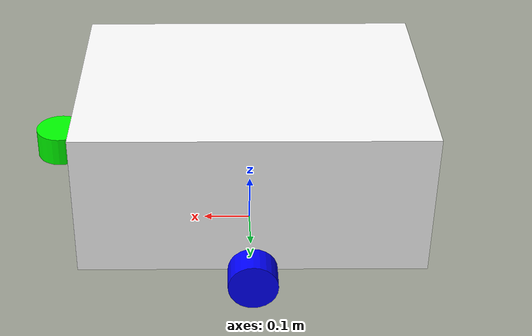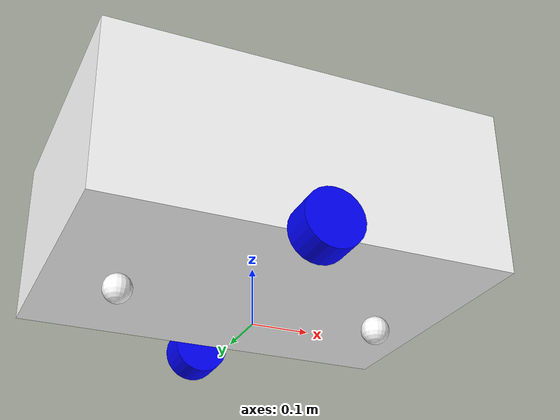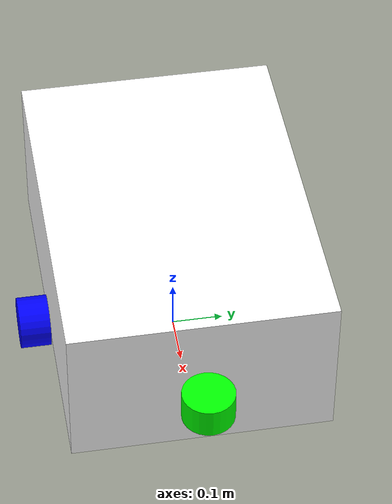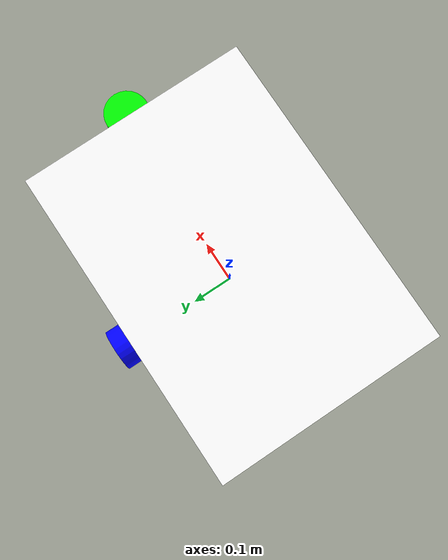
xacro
<?xml version="1.0" ?>
<robot name = "UDOn" xmlns:xacro = "http://www.ros.org/wiki/xacro">

    <xacro:include filename = "properties.xacro" />
    <xacro:include filename = "model.xacro" />

</robot>

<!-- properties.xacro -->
<robot xmlns:xacro = "http://www.ros.org/wiki/xacro">

    <material name = "white">
        <color rgba = "1 1 1 1" />
    </material>
    <material name = "blue">
        <color rgba = "0 0 1 1" />
    </material>
    <material name = "green">
        <color rgba = "0 1 0 1" />
    </material>
    <material name = "red">
        <color rgba = "1 0 0 1" />
    </material>
    <material name = "black">
        <color rgba = "0 0 0 1" />
    </material>

    <xacro:macro name = "box_inertial" params = "m l w h xyz rpy">
        <inertial>
            <origin xyz = "${xyz}" rpy = "${rpy}" />
            <mass value="${m}"/>
            <inertia ixx="${(m / 12) * (h*h + w*w)}" ixy="0.0" ixz="0.0"
                     iyy="${(m / 12) * (h*h + l*l)}" iyz="0.0"
                     izz="${(m / 12) * (w*w + l*l)}" />
        </inertial>
    </xacro:macro>

    <xacro:macro name = "cylinder_inertial" params = "m r h xyz rpy">
        <inertial>
            <origin xyz = "${xyz}" rpy = "${rpy}" />
            <mass value="${m}"/>
            <inertia ixx="${ (m / 12) * (h*h + 3*r*r) }" ixy="0.0" ixz="0.0"
                     iyy="${ (m / 12) * (h*h + 3*r*r) }" iyz="0.0"
                     izz="${ (m / 12) * (r*r) }" />
        </inertial>
    </xacro:macro>

    <xacro:macro name = "sphere_inertial" params = "m r xyz rpy">
        <inertial>
            <origin xyz="${xyz}" rpy="${rpy}"/>
            <mass value = "${m}" />
            <inertia ixx="${(2*m*r*r)/ 5}" ixy="0.0" ixz="0.0"
                     iyy="${(2*m*r*r)/ 5}" iyz="0.0"
                     izz="${(2*m*r*r)/ 5}"/>
        </inertial>
    </xacro:macro>

</robot>

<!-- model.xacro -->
<robot xmlns:xacro = "http://www.ros.org/wiki/xacro">

    <xacro:property name = "base_length" value = "0.7" />
    <xacro:property name = "base_width" value = "0.5" />
    <xacro:property name = "base_height" value = "0.3" />

    <xacro:property name = "wheel_radius" value = "0.05" />
    <xacro:property name = "wheel_length" value = "0.06" />

    <xacro:property name = "support_wheel_radius" value = "0.025" />

    <xacro:property name = "lidar_radius" value = "0.05" />
    <xacro:property name = "lidar_length" value = "0.06" />

    <link name = "footprint">
    </link>

    <link name = "base_link">
        <visual>
            <geometry>
                <box size = "${base_length} ${base_width} ${base_height}" />
            </geometry>
            <origin xyz = "0 0 0" rpy = "0 0 0" />
            <material name = "white" />
        </visual>
        <!--add collision property-->
        <collision>
            <geometry>
                <box size = "${base_length} ${base_width} ${base_height}" />
            </geometry>
            <origin xyz = "0 0 0" rpy = "0 0 0" />
        </collision>
        <!--add inertial property-->
        <xacro:box_inertial m = "15.0" l = "${base_length}" w = "${base_width}" h = "${base_height}"
                            xyz = "0 0 0" rpy = "0 0 0" />
    </link>

    <joint name = "base_joint" type = "fixed">
        <parent link = "footprint" />
        <child link = "base_link" />
        <origin xyz = "0 0 ${(base_height / 2.0 + wheel_radius)}" rpy = "0 0 0" />
    </joint>

    <link name = "lidar_link">
        <visual>
            <geometry>
                <cylinder radius="${lidar_radius}" length="${lidar_length}" />
            </geometry>
            <origin xyz = "0.0 0.0 0.0" rpy = "0.0 0.0 0.0" />
            <material name = "green" />
        </visual>
        <collision>
            <geometry>
                <cylinder radius="${lidar_radius}" length="${lidar_length}"/>
            </geometry>
            <origin xyz="0.0 0.0 0.0" rpy="0.0 0.0 0.0"/>
        </collision>
        <xacro:cylinder_inertial m = "0.5" r = "${lidar_radius}" h = "${lidar_length}"
                                 xyz = "0.0 0.0 0.0" rpy = "0.0 0.0 0.0" />
    </link>

    <joint name="lidar_joint" type="fixed">
        <parent link="base_link"/>
        <child link="lidar_link"/>
        <origin xyz = "${(base_length) / 2.0 + lidar_radius} 0 0" rpy = "0 0 0" />
        <axis xyz="0.0 0.0 0.0"/>
    </joint>

    <link name = "right_wheel">
        <visual>
            <geometry>
                <cylinder radius = "${wheel_radius}" length = "${wheel_length}" />
            </geometry>
            <origin xyz = "0 0 0" rpy = "${pi / 2.0} 0 0" />
            <material name = "blue" />
        </visual>
        <collision>
            <geometry>
                <cylinder radius = "${wheel_radius}" length = "${wheel_length}" />
            </geometry>
            <origin xyz = "0 0 0" rpy = "${pi / 2.0} 0 0" />
        </collision>
        <xacro:cylinder_inertial m = "5.0" r = "${wheel_radius}" h = "${wheel_length}"
                                 xyz = "0 0 0" rpy = "${pi / 2.0} 0 0" />
    </link>

    <link name = "left_wheel">
        <visual>
            <geometry>
                <cylinder radius = "${wheel_radius}" length = "${wheel_length}" />
            </geometry>
            <origin xyz = "0 0 0" rpy = "${pi / 2.0} 0 0" />
            <material name = "blue" />
        </visual>

        <collision>
            <geometry>
                <cylinder radius = "${wheel_radius}" length = "${wheel_length}" />
            </geometry>
            <origin xyz = "0 0 0" rpy = "${pi / 2.0} 0 0" />
        </collision>

        <xacro:cylinder_inertial m = "5.0" r = "${wheel_radius}" h = "${wheel_length}"
                                 xyz = "0 0 0" rpy = "${pi / 2.0} 0 0" />
    </link>

    <link name = "frontSuppor_wheel">
        <visual>
            <geometry>
                <sphere radius = "${support_wheel_radius}" />
            </geometry>
            <origin xyz = "0 0 0" rpy = "0 0 0" />
            <material name = "white" />
        </visual>
        <collision>
            <geometry>
                <sphere radius="${support_wheel_radius}"/>
            </geometry>
            <origin xyz="0.0 0.0 0.0" rpy="0.0 0.0 0.0"/>
        </collision>
        <xacro:sphere_inertial m = "0.5" r = "${support_wheel_radius}" xyz = "0.0 0.0 0.0" rpy = "0.0 0.0 0.0" />
    </link>

    <link name = "backSuppor_wheel">
        <visual>
            <geometry>
                <sphere radius = "${support_wheel_radius}" />
            </geometry>
            <origin xyz = "0 0 0" rpy = "0 0 0" />
            <material name = "white" />
        </visual>
        <collision>
            <geometry>
                <sphere radius="${support_wheel_radius}"/>
            </geometry>
            <origin xyz="0.0 0.0 0.0" rpy="0.0 0.0 0.0"/>
        </collision>
        <xacro:sphere_inertial m = "0.5" r = "${support_wheel_radius}" xyz = "0.0 0.0 0.0" rpy = "0.0 0.0 0.0" />
    </link>

    <link name = "imu_link">
        <visual>
            <geometry>
                <box size="0.045 0.04 0.01"/>
            </geometry>
            <origin xyz = "0 0 0" rpy = "0 0 0" />
            <material name = "white" />
        </visual>
        <collision>
            <geometry>
                <sphere radius="${support_wheel_radius}"/>
            </geometry>
            <origin xyz="0.0 0.0 0.0" rpy="0.0 0.0 0.0"/>
        </collision>
        <xacro:sphere_inertial m = "0.5" r = "${support_wheel_radius}" xyz = "0.0 0.0 0.0" rpy = "0.0 0.0 0.0" />
    </link>

    <!-- IMU joint-->
    <joint name = "base_imu_joint" type = "fixed">
        <parent link = "base_link" />
        <child link = "imu_link" />
        <origin xyz = "0 0 0" rpy = "0 0 0" />
        <axis xyz = "0 0 0" />
    </joint>

    <!--wheel joint-->
    <joint name = "base_left_wheel_joint" type = "fixed">
        <parent link = "base_link" />
        <child link = "left_wheel" />
        <origin xyz = "0 ${(base_width + wheel_length) / 2.0} ${-base_height / 2.0}" rpy = "0 0 0" />
        <axis xyz = "0 1 0" />
    </joint>

    <joint name = "base_right_wheel_joint" type = "fixed">
        <parent link = "base_link" />
        <child link = "right_wheel" />
        <origin xyz = "0 ${-(base_width + wheel_length) / 2.0} ${-base_height / 2.0}" rpy = "0 0 0" />
        <axis xyz = "0 1 0" />
    </joint>

    <joint name = "base_frontSuport_wheel_joint" type = "fixed">
        <parent link = "base_link" />
        <child link = "frontSuppor_wheel" />
        <origin xyz = "${base_length / 3.0} 0 ${-base_height / 2.0 - support_wheel_radius}" rpy = "0 0 0" />
    </joint>

    <joint name = "base_backSuport_wheel_joint" type = "fixed">
        <parent link = "base_link" />
        <child link = "backSuppor_wheel" />
        <origin xyz = "${-base_length / 3.0} 0 ${-base_height / 2.0 - support_wheel_radius}" rpy = "0 0 0" />
    </joint>

    <!--model color set in gazebo-->
    <gazebo reference = "base_link">
        <material>Gazebo/White</material>
    </gazebo>

    <gazebo reference = "right_wheel">
        <material>Gazebo/Blue</material>
    </gazebo>

    <gazebo reference = "right_wheel">
        <material>Gazebo/Blue</material>
    </gazebo>

</robot>
